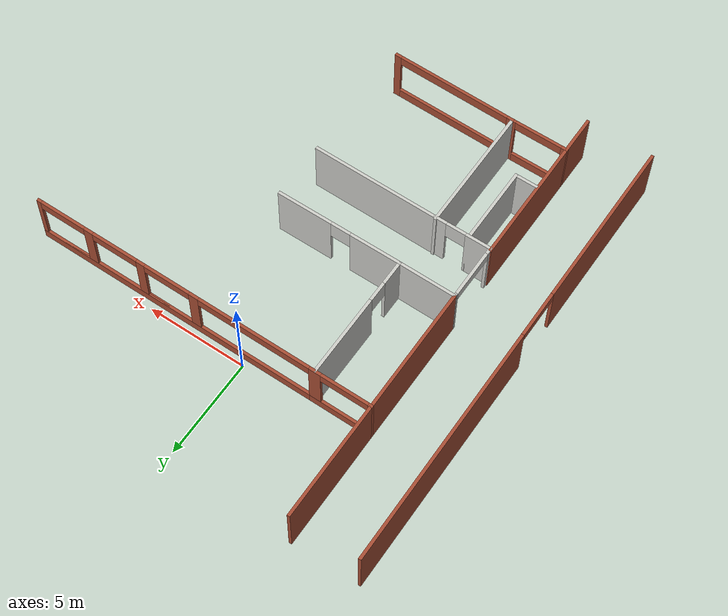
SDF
<sdf version="1.7">
 <model name="laboratory_world">
  <pose>0.666778 -6.1515 0 0 -0 0</pose>
  <link name="Wall_0">
   <collision name="Wall_0_Collision">
    <geometry><box><size>6.5 0.15 3</size></box></geometry>
    <pose>0 0 1.5 0 -0 0</pose>
   </collision>
   <visual name="Wall_0_Visual">
    <pose>0 0 1.5 0 -0 0</pose>
    <geometry><box><size>6.5 0.15 3</size></box></geometry>
    <material>
     <script><uri>file://media/materials/scripts/gazebo.material</uri><name>Gazebo/Bricks</name></script>
     <ambient>0.760784 0.662745 0.627451 1</ambient>
    </material>
    <meta><layer>0</layer></meta>
   </visual>
   <pose>-7.17678 2.5765 0 0 -0 -1.5708</pose>
  </link>
  <link name="Wall_100">
   <collision name="Wall_100_Collision">
    <geometry><box><size>6.5 0.15 3</size></box></geometry>
    <pose>0 0 1.5 0 -0 0</pose>
   </collision>
   <visual name="Wall_100_Visual">
    <pose>0 0 1.5 0 -0 0</pose>
    <geometry><box><size>6.5 0.15 3</size></box></geometry>
    <material>
     <script><uri>file://media/materials/scripts/gazebo.material</uri><name>Gazebo/CeilingTiled</name></script>
     <ambient>0.921569 0.807843 0.615686 1</ambient>
    </material>
    <meta><layer>0</layer></meta>
   </visual>
   <pose>-4.37378 -6.5765 0 0 -0 1.5708</pose>
  </link>
  <link name="Wall_104">
   <pose>-7.17678 -2.0295 0 0 -0 1.5708</pose>
   <visual name="Wall_104_Visual_0">
    <pose>-1.31184 0 1.5 0 -0 0</pose>
    <geometry><box><size>0.388331 0.15 3</size></box></geometry>
    <material>
     <script><uri>file://media/materials/scripts/gazebo.material</uri><name>Gazebo/CeilingTiled</name></script>
     <ambient>0.921569 0.807843 0.615686 1</ambient>
    </material>
    <meta><layer>0</layer></meta>
   </visual>
   <collision name="Wall_104_Collision_0">
    <geometry><box><size>0.388331 0.15 3</size></box></geometry>
    <pose>-1.31184 0 1.5 0 -0 0</pose>
   </collision>
   <visual name="Wall_104_Visual_1">
    <pose>1.39417 0 1.5 0 -0 0</pose>
    <geometry><box><size>0.223669 0.15 3</size></box></geometry>
    <material>
     <script><uri>file://media/materials/scripts/gazebo.material</uri><name>Gazebo/CeilingTiled</name></script>
     <ambient>0.921569 0.807843 0.615686 1</ambient>
    </material>
    <meta><layer>0</layer></meta>
   </visual>
   <collision name="Wall_104_Collision_1">
    <geometry><box><size>0.223669 0.15 3</size></box></geometry>
    <pose>1.39417 0 1.5 0 -0 0</pose>
   </collision>
   <visual name="Wall_104_Visual_2">
    <pose>0.082331 0 2.75 0 -0 0</pose>
    <geometry><box><size>2.4 0.15 0.5</size></box></geometry>
    <material>
     <script><uri>file://media/materials/scripts/gazebo.material</uri><name>Gazebo/CeilingTiled</name></script>
     <ambient>0.921569 0.807843 0.615686 1</ambient>
    </material>
    <meta><layer>0</layer></meta>
   </visual>
   <collision name="Wall_104_Collision_2">
    <geometry><box><size>2.4 0.15 0.5</size></box></geometry>
    <pose>0.082331 0 2.75 0 -0 0</pose>
   </collision>
  </link>
  <link name="Wall_106">
   <collision name="Wall_106_Collision">
    <geometry><box><size>1.2 0.15 3</size></box></geometry>
    <pose>0 0 1.5 0 -0 0</pose>
   </collision>
   <visual name="Wall_106_Visual">
    <pose>0 0 1.5 0 -0 0</pose>
    <geometry><box><size>1.2 0.15 3</size></box></geometry>
    <material>
     <script><uri>file://media/materials/scripts/gazebo.material</uri><name>Gazebo/CeilingTiled</name></script>
     <ambient>0.921569 0.807843 0.615686 1</ambient>
    </material>
    <meta><layer>0</layer></meta>
   </visual>
   <pose>-6.60478 -7.3105 0 0 -0 0</pose>
  </link>
  <link name="Wall_108">
   <collision name="Wall_108_Collision">
    <geometry><box><size>4 0.15 3</size></box></geometry>
    <pose>0 0 1.5 0 -0 0</pose>
   </collision>
   <visual name="Wall_108_Visual">
    <pose>0 0 1.5 0 -0 0</pose>
    <geometry><box><size>4 0.15 3</size></box></geometry>
    <material>
     <script><uri>file://media/materials/scripts/gazebo.material</uri><name>Gazebo/CeilingTiled</name></script>
     <ambient>0.921569 0.807843 0.615686 1</ambient>
    </material>
    <meta><layer>0</layer></meta>
   </visual>
   <pose>-6.07978 -5.3855 0 0 -0 1.5708</pose>
  </link>
  <link name="Wall_112">
   <pose>-5.79878 -9.7515 0 0 -0 3.14159</pose>
   <visual name="Wall_112_Visual_0">
    <pose>-1.36527 0 1.5 0 -0 0</pose>
    <geometry><box><size>0.269459 0.15 3</size></box></geometry>
    <material>
     <script><uri>file://media/materials/scripts/gazebo.material</uri><name>Gazebo/Bricks</name></script>
     <ambient>0.760784 0.662745 0.627451 1</ambient>
    </material>
    <meta><layer>0</layer></meta>
   </visual>
   <collision name="Wall_112_Collision_0">
    <geometry><box><size>0.269459 0.15 3</size></box></geometry>
    <pose>-1.36527 0 1.5 0 -0 0</pose>
   </collision>
   <visual name="Wall_112_Visual_1">
    <pose>0.134729 0 0.25 0 -0 0</pose>
    <geometry><box><size>2.73054 0.15 0.5</size></box></geometry>
    <material>
     <script><uri>file://media/materials/scripts/gazebo.material</uri><name>Gazebo/Bricks</name></script>
     <ambient>0.760784 0.662745 0.627451 1</ambient>
    </material>
    <meta><layer>0</layer></meta>
   </visual>
   <collision name="Wall_112_Collision_1">
    <geometry><box><size>2.73054 0.15 0.5</size></box></geometry>
    <pose>0.134729 0 0.25 0 -0 0</pose>
   </collision>
   <visual name="Wall_112_Visual_2">
    <pose>1.33473 0 1.75 0 -0 0</pose>
    <geometry><box><size>0.330541 0.15 2.5</size></box></geometry>
    <material>
     <script><uri>file://media/materials/scripts/gazebo.material</uri><name>Gazebo/Bricks</name></script>
     <ambient>0.760784 0.662745 0.627451 1</ambient>
    </material>
    <meta><layer>0</layer></meta>
   </visual>
   <collision name="Wall_112_Collision_2">
    <geometry><box><size>0.330541 0.15 2.5</size></box></geometry>
    <pose>1.33473 0 1.75 0 -0 0</pose>
   </collision>
   <visual name="Wall_112_Visual_3">
    <pose>-0.030541 0 2.75 0 -0 0</pose>
    <geometry><box><size>2.4 0.15 0.5</size></box></geometry>
    <material>
     <script><uri>file://media/materials/scripts/gazebo.material</uri><name>Gazebo/Bricks</name></script>
     <ambient>0.760784 0.662745 0.627451 1</ambient>
    </material>
    <meta><layer>0</layer></meta>
   </visual>
   <collision name="Wall_112_Collision_3">
    <geometry><box><size>2.4 0.15 0.5</size></box></geometry>
    <pose>-0.030541 0 2.75 0 -0 0</pose>
   </collision>
  </link>
  <link name="Wall_114">
   <collision name="Wall_114_Collision">
    <geometry><box><size>6.5 0.15 3</size></box></geometry>
    <pose>0 0 1.5 0 -0 0</pose>
   </collision>
   <visual name="Wall_114_Visual">
    <pose>0 0 1.5 0 -0 0</pose>
    <geometry><box><size>6.5 0.15 3</size></box></geometry>
    <material>
     <script><uri>file://media/materials/scripts/gazebo.material</uri><name>Gazebo/Bricks</name></script>
     <ambient>0.760784 0.662745 0.627451 1</ambient>
    </material>
    <meta><layer>0</layer></meta>
   </visual>
   <pose>-7.22378 -6.5765 0 0 -0 1.5708</pose>
  </link>
  <link name="Wall_116">
   <collision name="Wall_116_Collision">
    <geometry><box><size>6 0.15 3</size></box></geometry>
    <pose>0 0 1.5 0 -0 0</pose>
   </collision>
   <visual name="Wall_116_Visual">
    <pose>0 0 1.5 0 -0 0</pose>
    <geometry><box><size>6 0.15 3</size></box></geometry>
    <material>
     <script><uri>file://media/materials/scripts/gazebo.material</uri><name>Gazebo/Bricks</name></script>
     <ambient>0.760784 0.662745 0.627451 1</ambient>
    </material>
    <meta><layer>0</layer></meta>
   </visual>
   <pose>-7.17678 8.6765 0 0 -0 1.5708</pose>
  </link>
  <link name="Wall_118">
   <collision name="Wall_118_Collision">
    <geometry><box><size>2 0.15 3</size></box></geometry>
    <pose>0 0 1.5 0 -0 0</pose>
   </collision>
   <visual name="Wall_118_Visual">
    <pose>0 0 1.5 0 -0 0</pose>
    <geometry><box><size>2 0.15 3</size></box></geometry>
    <material>
     <script><uri>file://media/materials/scripts/gazebo.material</uri><name>Gazebo/Bricks</name></script>
     <ambient>0.760784 0.662745 0.627451 1</ambient>
    </material>
    <meta><layer>0</layer></meta>
   </visual>
   <pose>-7.22378 -10.6765 0 0 -0 -1.5708</pose>
  </link>
  <link name="Wall_123">
   <pose>-10.5738 -0.0515 0 0 -0 1.5708</pose>
   <visual name="Wall_123_Visual_0">
    <pose>-7.31381 0 1.5 0 -0 0</pose>
    <geometry><box><size>8.62238 0.15 3</size></box></geometry>
    <material>
     <script><uri>file://media/materials/scripts/gazebo.material</uri><name>Gazebo/Bricks</name></script>
     <ambient>0.921569 0.807843 0.615686 1</ambient>
    </material>
    <meta><layer>0</layer></meta>
   </visual>
   <collision name="Wall_123_Collision_0">
    <geometry><box><size>8.62238 0.15 3</size></box></geometry>
    <pose>-7.31381 0 1.5 0 -0 0</pose>
   </collision>
   <visual name="Wall_123_Visual_1">
    <pose>5.51119 0 1.5 0 -0 0</pose>
    <geometry><box><size>12.2276 0.15 3</size></box></geometry>
    <material>
     <script><uri>file://media/materials/scripts/gazebo.material</uri><name>Gazebo/Bricks</name></script>
     <ambient>0.921569 0.807843 0.615686 1</ambient>
    </material>
    <meta><layer>0</layer></meta>
   </visual>
   <collision name="Wall_123_Collision_1">
    <geometry><box><size>12.2276 0.15 3</size></box></geometry>
    <pose>5.51119 0 1.5 0 -0 0</pose>
   </collision>
   <visual name="Wall_123_Visual_2">
    <pose>-1.80262 0 2.75 0 -0 0</pose>
    <geometry><box><size>2.4 0.15 0.5</size></box></geometry>
    <material>
     <script><uri>file://media/materials/scripts/gazebo.material</uri><name>Gazebo/Bricks</name></script>
     <ambient>0.921569 0.807843 0.615686 1</ambient>
    </material>
    <meta><layer>0</layer></meta>
   </visual>
   <collision name="Wall_123_Collision_2">
    <geometry><box><size>2.4 0.15 0.5</size></box></geometry>
    <pose>-1.80262 0 2.75 0 -0 0</pose>
   </collision>
  </link>
  <link name="Wall_19">
   <pose>1.69822 5.7515 0 0 -0 0</pose>
   <visual name="Wall_19_Visual_0">
    <pose>-8.8394 0 1.5 0 -0 0</pose>
    <geometry><box><size>0.221205 0.15 3</size></box></geometry>
    <material>
     <script><uri>file://media/materials/scripts/gazebo.material</uri><name>Gazebo/Bricks</name></script>
     <ambient>0.760784 0.662745 0.627451 1</ambient>
    </material>
    <meta><layer>0</layer></meta>
   </visual>
   <collision name="Wall_19_Collision_0">
    <geometry><box><size>0.221205 0.15 3</size></box></geometry>
    <pose>-8.8394 0 1.5 0 -0 0</pose>
   </collision>
   <visual name="Wall_19_Visual_1">
    <pose>-7.22592 0 0.25 0 -0 0</pose>
    <geometry><box><size>3.00574 0.15 0.5</size></box></geometry>
    <material>
     <script><uri>file://media/materials/scripts/gazebo.material</uri><name>Gazebo/Bricks</name></script>
     <ambient>0.760784 0.662745 0.627451 1</ambient>
    </material>
    <meta><layer>0</layer></meta>
   </visual>
   <collision name="Wall_19_Collision_1">
    <geometry><box><size>3.00574 0.15 0.5</size></box></geometry>
    <pose>-7.22592 0 0.25 0 -0 0</pose>
   </collision>
   <visual name="Wall_19_Visual_2">
    <pose>-5.72305 0 1.5 0 -0 0</pose>
    <geometry><box><size>0 0.15 3</size></box></geometry>
    <material>
     <script><uri>file://media/materials/scripts/gazebo.material</uri><name>Gazebo/Bricks</name></script>
     <ambient>0.760784 0.662745 0.627451 1</ambient>
    </material>
    <meta><layer>0</layer></meta>
   </visual>
   <collision name="Wall_19_Collision_2">
    <geometry><box><size>0 0.15 3</size></box></geometry>
    <pose>-5.72305 0 1.5 0 -0 0</pose>
   </collision>
   <visual name="Wall_19_Visual_3">
    <pose>1.61347 0 0.25 0 -0 0</pose>
    <geometry><box><size>14.6731 0.15 0.5</size></box></geometry>
    <material>
     <script><uri>file://media/materials/scripts/gazebo.material</uri><name>Gazebo/Bricks</name></script>
     <ambient>0.760784 0.662745 0.627451 1</ambient>
    </material>
    <meta><layer>0</layer></meta>
   </visual>
   <collision name="Wall_19_Collision_3">
    <geometry><box><size>14.6731 0.15 0.5</size></box></geometry>
    <pose>1.61347 0 0.25 0 -0 0</pose>
   </collision>
   <visual name="Wall_19_Visual_4">
    <pose>0.326891 0 1.75 0 -0 0</pose>
    <geometry><box><size>0.499886 0.15 2.5</size></box></geometry>
    <material>
     <script><uri>file://media/materials/scripts/gazebo.material</uri><name>Gazebo/Bricks</name></script>
     <ambient>0.760784 0.662745 0.627451 1</ambient>
    </material>
    <meta><layer>0</layer></meta>
   </visual>
   <collision name="Wall_19_Collision_4">
    <geometry><box><size>0.499886 0.15 2.5</size></box></geometry>
    <pose>0.326891 0 1.75 0 -0 0</pose>
   </collision>
   <visual name="Wall_19_Visual_5">
    <pose>3.20242 0 1.75 0 -0 0</pose>
    <geometry><box><size>0.451166 0.15 2.5</size></box></geometry>
    <material>
     <script><uri>file://media/materials/scripts/gazebo.material</uri><name>Gazebo/Bricks</name></script>
     <ambient>0.760784 0.662745 0.627451 1</ambient>
    </material>
    <meta><layer>0</layer></meta>
   </visual>
   <collision name="Wall_19_Collision_5">
    <geometry><box><size>0.451166 0.15 2.5</size></box></geometry>
    <pose>3.20242 0 1.75 0 -0 0</pose>
   </collision>
   <visual name="Wall_19_Visual_6">
    <pose>6.07079 0 1.75 0 -0 0</pose>
    <geometry><box><size>0.485575 0.15 2.5</size></box></geometry>
    <material>
     <script><uri>file://media/materials/scripts/gazebo.material</uri><name>Gazebo/Bricks</name></script>
     <ambient>0.760784 0.662745 0.627451 1</ambient>
    </material>
    <meta><layer>0</layer></meta>
   </visual>
   <collision name="Wall_19_Collision_6">
    <geometry><box><size>0.485575 0.15 2.5</size></box></geometry>
    <pose>6.07079 0 1.75 0 -0 0</pose>
   </collision>
   <visual name="Wall_19_Visual_7">
    <pose>8.83179 0 1.75 0 -0 0</pose>
    <geometry><box><size>0.236425 0.15 2.5</size></box></geometry>
    <material>
     <script><uri>file://media/materials/scripts/gazebo.material</uri><name>Gazebo/Bricks</name></script>
     <ambient>0.760784 0.662745 0.627451 1</ambient>
    </material>
    <meta><layer>0</layer></meta>
   </visual>
   <collision name="Wall_19_Collision_7">
    <geometry><box><size>0.236425 0.15 2.5</size></box></geometry>
    <pose>8.83179 0 1.75 0 -0 0</pose>
   </collision>
   <visual name="Wall_19_Visual_8">
    <pose>1.77683 0 0.5 0 -0 0</pose>
    <geometry><box><size>2.4 0.15 0</size></box></geometry>
    <material>
     <script><uri>file://media/materials/scripts/gazebo.material</uri><name>Gazebo/Bricks</name></script>
     <ambient>0.760784 0.662745 0.627451 1</ambient>
    </material>
    <meta><layer>0</layer></meta>
   </visual>
   <collision name="Wall_19_Collision_8">
    <geometry><box><size>2.4 0.15 0</size></box></geometry>
    <pose>1.77683 0 0.5 0 -0 0</pose>
   </collision>
   <visual name="Wall_19_Visual_9">
    <pose>4.628 0 0.5 0 -0 0</pose>
    <geometry><box><size>2.4 0.15 0</size></box></geometry>
    <material>
     <script><uri>file://media/materials/scripts/gazebo.material</uri><name>Gazebo/Bricks</name></script>
     <ambient>0.760784 0.662745 0.627451 1</ambient>
    </material>
    <meta><layer>0</layer></meta>
   </visual>
   <collision name="Wall_19_Collision_9">
    <geometry><box><size>2.4 0.15 0</size></box></geometry>
    <pose>4.628 0 0.5 0 -0 0</pose>
   </collision>
   <visual name="Wall_19_Visual_10">
    <pose>7.51358 0 0.5 0 -0 0</pose>
    <geometry><box><size>2.4 0.15 0</size></box></geometry>
    <material>
     <script><uri>file://media/materials/scripts/gazebo.material</uri><name>Gazebo/Bricks</name></script>
     <ambient>0.760784 0.662745 0.627451 1</ambient>
    </material>
    <meta><layer>0</layer></meta>
   </visual>
   <collision name="Wall_19_Collision_10">
    <geometry><box><size>2.4 0.15 0</size></box></geometry>
    <pose>7.51358 0 0.5 0 -0 0</pose>
   </collision>
   <visual name="Wall_19_Visual_11">
    <pose>-6.02592 0 1.75 0 -0 0</pose>
    <geometry><box><size>0.605742 0.15 2.5</size></box></geometry>
    <material>
     <script><uri>file://media/materials/scripts/gazebo.material</uri><name>Gazebo/Bricks</name></script>
     <ambient>0.760784 0.662745 0.627451 1</ambient>
    </material>
    <meta><layer>0</layer></meta>
   </visual>
   <collision name="Wall_19_Collision_11">
    <geometry><box><size>0.605742 0.15 2.5</size></box></geometry>
    <pose>-6.02592 0 1.75 0 -0 0</pose>
   </collision>
   <visual name="Wall_19_Visual_12">
    <pose>-6.02592 0 1.75 0 -0 0</pose>
    <geometry><box><size>0.605742 0.15 2.5</size></box></geometry>
    <material>
     <script><uri>file://media/materials/scripts/gazebo.material</uri><name>Gazebo/Bricks</name></script>
     <ambient>0.760784 0.662745 0.627451 1</ambient>
    </material>
    <meta><layer>0</layer></meta>
   </visual>
   <collision name="Wall_19_Collision_12">
    <geometry><box><size>0.605742 0.15 2.5</size></box></geometry>
    <pose>-6.02592 0 1.75 0 -0 0</pose>
   </collision>
   <visual name="Wall_19_Visual_13">
    <pose>-2.82305 0 2.75 0 -0 0</pose>
    <geometry><box><size>5.8 0.15 0.5</size></box></geometry>
    <material>
     <script><uri>file://media/materials/scripts/gazebo.material</uri><name>Gazebo/Bricks</name></script>
     <ambient>0.760784 0.662745 0.627451 1</ambient>
    </material>
    <meta><layer>0</layer></meta>
   </visual>
   <collision name="Wall_19_Collision_13">
    <geometry><box><size>5.8 0.15 0.5</size></box></geometry>
    <pose>-2.82305 0 2.75 0 -0 0</pose>
   </collision>
   <visual name="Wall_19_Visual_14">
    <pose>-7.52879 0 2.75 0 -0 0</pose>
    <geometry><box><size>2.4 0.15 0.5</size></box></geometry>
    <material>
     <script><uri>file://media/materials/scripts/gazebo.material</uri><name>Gazebo/Bricks</name></script>
     <ambient>0.760784 0.662745 0.627451 1</ambient>
    </material>
    <meta><layer>0</layer></meta>
   </visual>
   <collision name="Wall_19_Collision_14">
    <geometry><box><size>2.4 0.15 0.5</size></box></geometry>
    <pose>-7.52879 0 2.75 0 -0 0</pose>
   </collision>
   <visual name="Wall_19_Visual_15">
    <pose>1.77683 0 2.75 0 -0 0</pose>
    <geometry><box><size>2.4 0.15 0.5</size></box></geometry>
    <material>
     <script><uri>file://media/materials/scripts/gazebo.material</uri><name>Gazebo/Bricks</name></script>
     <ambient>0.760784 0.662745 0.627451 1</ambient>
    </material>
    <meta><layer>0</layer></meta>
   </visual>
   <collision name="Wall_19_Collision_15">
    <geometry><box><size>2.4 0.15 0.5</size></box></geometry>
    <pose>1.77683 0 2.75 0 -0 0</pose>
   </collision>
   <visual name="Wall_19_Visual_16">
    <pose>4.628 0 2.75 0 -0 0</pose>
    <geometry><box><size>2.4 0.15 0.5</size></box></geometry>
    <material>
     <script><uri>file://media/materials/scripts/gazebo.material</uri><name>Gazebo/Bricks</name></script>
     <ambient>0.760784 0.662745 0.627451 1</ambient>
    </material>
    <meta><layer>0</layer></meta>
   </visual>
   <collision name="Wall_19_Collision_16">
    <geometry><box><size>2.4 0.15 0.5</size></box></geometry>
    <pose>4.628 0 2.75 0 -0 0</pose>
   </collision>
   <visual name="Wall_19_Visual_17">
    <pose>7.51358 0 2.75 0 -0 0</pose>
    <geometry><box><size>2.4 0.15 0.5</size></box></geometry>
    <material>
     <script><uri>file://media/materials/scripts/gazebo.material</uri><name>Gazebo/Bricks</name></script>
     <ambient>0.760784 0.662745 0.627451 1</ambient>
    </material>
    <meta><layer>0</layer></meta>
   </visual>
   <collision name="Wall_19_Collision_17">
    <geometry><box><size>2.4 0.15 0.5</size></box></geometry>
    <pose>7.51358 0 2.75 0 -0 0</pose>
   </collision>
  </link>
  <link name="Wall_4">
   <collision name="Wall_4_Collision">
    <geometry><box><size>3 0.15 3</size></box></geometry>
    <pose>0 0 1.5 0 -0 0</pose>
   </collision>
   <visual name="Wall_4_Visual">
    <pose>0 0 1.5 0 -0 0</pose>
    <geometry><box><size>3 0.15 3</size></box></geometry>
    <material>
     <script><uri>file://media/materials/scripts/gazebo.material</uri><name>Gazebo/CeilingTiled</name></script>
     <ambient>0.921569 0.807843 0.615686 1</ambient>
    </material>
    <meta><layer>0</layer></meta>
   </visual>
   <pose>-5.75178 -0.607 0 0 -0 -0.005965</pose>
  </link>
  <link name="Wall_5">
   <pose>-4.31828 2.5595 0 0 -0 1.56812</pose>
   <visual name="Wall_5_Visual_0">
    <pose>-2.60055 0 1.5 0 -0 0</pose>
    <geometry><box><size>1.29889 0.15 3</size></box></geometry>
    <material>
     <script><uri>file://media/materials/scripts/gazebo.material</uri><name>Gazebo/CeilingTiled</name></script>
     <ambient>0.921569 0.807843 0.615686 1</ambient>
    </material>
    <meta><layer>0</layer></meta>
   </visual>
   <collision name="Wall_5_Collision_0">
    <geometry><box><size>1.29889 0.15 3</size></box></geometry>
    <pose>-2.60055 0 1.5 0 -0 0</pose>
   </collision>
   <visual name="Wall_5_Visual_1">
    <pose>1.14945 0 1.5 0 -0 0</pose>
    <geometry><box><size>4.20111 0.15 3</size></box></geometry>
    <material>
     <script><uri>file://media/materials/scripts/gazebo.material</uri><name>Gazebo/CeilingTiled</name></script>
     <ambient>0.921569 0.807843 0.615686 1</ambient>
    </material>
    <meta><layer>0</layer></meta>
   </visual>
   <collision name="Wall_5_Collision_1">
    <geometry><box><size>4.20111 0.15 3</size></box></geometry>
    <pose>1.14945 0 1.5 0 -0 0</pose>
   </collision>
   <visual name="Wall_5_Visual_2">
    <pose>-1.45111 0 2.5 0 -0 0</pose>
    <geometry><box><size>1 0.15 1</size></box></geometry>
    <material>
     <script><uri>file://media/materials/scripts/gazebo.material</uri><name>Gazebo/CeilingTiled</name></script>
     <ambient>0.921569 0.807843 0.615686 1</ambient>
    </material>
    <meta><layer>0</layer></meta>
   </visual>
   <collision name="Wall_5_Collision_2">
    <geometry><box><size>1 0.15 1</size></box></geometry>
    <pose>-1.45111 0 2.5 0 -0 0</pose>
   </collision>
  </link>
  <link name="Wall_57">
   <collision name="Wall_57_Collision">
    <geometry><box><size>6.5 0.15 3</size></box></geometry>
    <pose>0 0 1.5 0 -0 0</pose>
   </collision>
   <visual name="Wall_57_Visual">
    <pose>0 0 1.5 0 -0 0</pose>
    <geometry><box><size>6.5 0.15 3</size></box></geometry>
    <material>
     <script><uri>file://media/materials/scripts/gazebo.material</uri><name>Gazebo/CeilingTiled</name></script>
     <ambient>0.921569 0.807843 0.615686 1</ambient>
    </material>
    <meta><layer>0</layer></meta>
   </visual>
   <pose>-1.15178 -3.4685 0 0 -0 -0.006299</pose>
  </link>
  <link name="Wall_7">
   <pose>-1.15178 -0.607 0 0 -0 0.002677</pose>
   <visual name="Wall_7_Visual_0">
    <pose>-1.92269 0 1.5 0 -0 0</pose>
    <geometry><box><size>2.6547 0.15 3</size></box></geometry>
    <material>
     <script><uri>file://media/materials/scripts/gazebo.material</uri><name>Gazebo/CeilingTiled</name></script>
     <ambient>0.921569 0.807843 0.615686 1</ambient>
    </material>
    <meta><layer>0</layer></meta>
   </visual>
   <collision name="Wall_7_Collision_0">
    <geometry><box><size>2.6547 0.15 3</size></box></geometry>
    <pose>-1.92269 0 1.5 0 -0 0</pose>
   </collision>
   <visual name="Wall_7_Visual_1">
    <pose>1.82735 0 1.5 0 -0 0</pose>
    <geometry><box><size>2.84537 0.15 3</size></box></geometry>
    <material>
     <script><uri>file://media/materials/scripts/gazebo.material</uri><name>Gazebo/CeilingTiled</name></script>
     <ambient>0.921569 0.807843 0.615686 1</ambient>
    </material>
    <meta><layer>0</layer></meta>
   </visual>
   <collision name="Wall_7_Collision_1">
    <geometry><box><size>2.84537 0.15 3</size></box></geometry>
    <pose>1.82735 0 1.5 0 -0 0</pose>
   </collision>
   <visual name="Wall_7_Visual_2">
    <pose>-0.095338 0 2.5 0 -0 0</pose>
    <geometry><box><size>1 0.15 1</size></box></geometry>
    <material>
     <script><uri>file://media/materials/scripts/gazebo.material</uri><name>Gazebo/CeilingTiled</name></script>
     <ambient>0.921569 0.807843 0.615686 1</ambient>
    </material>
    <meta><layer>0</layer></meta>
   </visual>
   <collision name="Wall_7_Collision_2">
    <geometry><box><size>1 0.15 1</size></box></geometry>
    <pose>-0.095338 0 2.5 0 -0 0</pose>
   </collision>
  </link>
  <link name="Wall_80">
   <pose>-5.75178 -3.4605 0 0 -0 0</pose>
   <visual name="Wall_80_Visual_0">
    <pose>-0.83004 0 1.5 0 -0 0</pose>
    <geometry><box><size>1.33992 0.15 3</size></box></geometry>
    <material>
     <script><uri>file://media/materials/scripts/gazebo.material</uri><name>Gazebo/CeilingTiled</name></script>
     <ambient>0.921569 0.807843 0.615686 1</ambient>
    </material>
    <meta><layer>0</layer></meta>
   </visual>
   <collision name="Wall_80_Collision_0">
    <geometry><box><size>1.33992 0.15 3</size></box></geometry>
    <pose>-0.83004 0 1.5 0 -0 0</pose>
   </collision>
   <visual name="Wall_80_Visual_1">
    <pose>1.16996 0 1.5 0 -0 0</pose>
    <geometry><box><size>0.660079 0.15 3</size></box></geometry>
    <material>
     <script><uri>file://media/materials/scripts/gazebo.material</uri><name>Gazebo/CeilingTiled</name></script>
     <ambient>0.921569 0.807843 0.615686 1</ambient>
    </material>
    <meta><layer>0</layer></meta>
   </visual>
   <collision name="Wall_80_Collision_1">
    <geometry><box><size>0.660079 0.15 3</size></box></geometry>
    <pose>1.16996 0 1.5 0 -0 0</pose>
   </collision>
   <visual name="Wall_80_Visual_2">
    <pose>0.339921 0 2.5 0 -0 0</pose>
    <geometry><box><size>1 0.15 1</size></box></geometry>
    <material>
     <script><uri>file://media/materials/scripts/gazebo.material</uri><name>Gazebo/CeilingTiled</name></script>
     <ambient>0.921569 0.807843 0.615686 1</ambient>
    </material>
    <meta><layer>0</layer></meta>
   </visual>
   <collision name="Wall_80_Collision_2">
    <geometry><box><size>1 0.15 1</size></box></geometry>
    <pose>0.339921 0 2.5 0 -0 0</pose>
   </collision>
  </link>
  <link name="Wall_98">
   <pose>-1.19878 -9.795 0 0 -0 3.12789</pose>
   <visual name="Wall_98_Visual_0">
    <pose>-3.07566 0 1.5 0 -0 0</pose>
    <geometry><box><size>0.348671 0.15 3</size></box></geometry>
    <material>
     <script><uri>file://media/materials/scripts/gazebo.material</uri><name>Gazebo/Bricks</name></script>
     <ambient>0.760784 0.662745 0.627451 1</ambient>
    </material>
    <meta><layer>0</layer></meta>
   </visual>
   <collision name="Wall_98_Collision_0">
    <geometry><box><size>0.348671 0.15 3</size></box></geometry>
    <pose>-3.07566 0 1.5 0 -0 0</pose>
   </collision>
   <visual name="Wall_98_Visual_1">
    <pose>0.174336 0 0.25 0 -0 0</pose>
    <geometry><box><size>6.15133 0.15 0.5</size></box></geometry>
    <material>
     <script><uri>file://media/materials/scripts/gazebo.material</uri><name>Gazebo/Bricks</name></script>
     <ambient>0.760784 0.662745 0.627451 1</ambient>
    </material>
    <meta><layer>0</layer></meta>
   </visual>
   <collision name="Wall_98_Collision_1">
    <geometry><box><size>6.15133 0.15 0.5</size></box></geometry>
    <pose>0.174336 0 0.25 0 -0 0</pose>
   </collision>
   <visual name="Wall_98_Visual_2">
    <pose>3.07434 0 1.75 0 -0 0</pose>
    <geometry><box><size>0.351329 0.15 2.5</size></box></geometry>
    <material>
     <script><uri>file://media/materials/scripts/gazebo.material</uri><name>Gazebo/Bricks</name></script>
     <ambient>0.760784 0.662745 0.627451 1</ambient>
    </material>
    <meta><layer>0</layer></meta>
   </visual>
   <collision name="Wall_98_Collision_2">
    <geometry><box><size>0.351329 0.15 2.5</size></box></geometry>
    <pose>3.07434 0 1.75 0 -0 0</pose>
   </collision>
   <visual name="Wall_98_Visual_3">
    <pose>-0.001329 0 2.75 0 -0 0</pose>
    <geometry><box><size>5.8 0.15 0.5</size></box></geometry>
    <material>
     <script><uri>file://media/materials/scripts/gazebo.material</uri><name>Gazebo/Bricks</name></script>
     <ambient>0.760784 0.662745 0.627451 1</ambient>
    </material>
    <meta><layer>0</layer></meta>
   </visual>
   <collision name="Wall_98_Collision_3">
    <geometry><box><size>5.8 0.15 0.5</size></box></geometry>
    <pose>-0.001329 0 2.75 0 -0 0</pose>
   </collision>
  </link>
  <static>1</static>
 </model>
</sdf>
